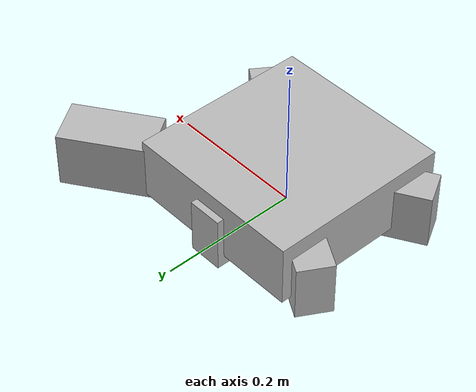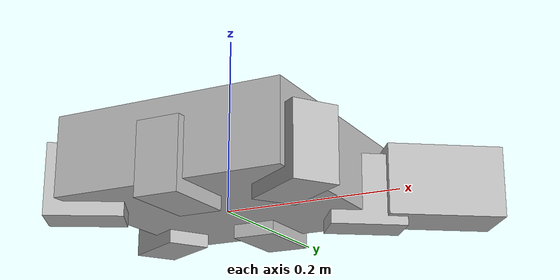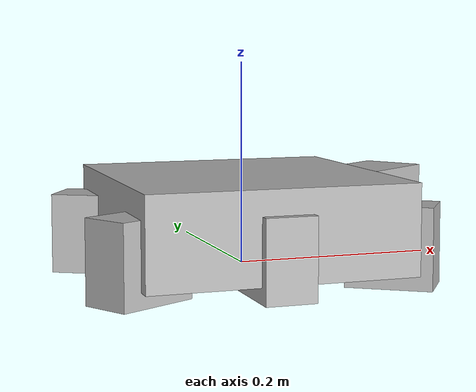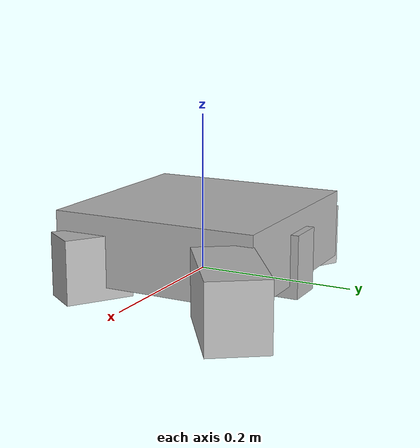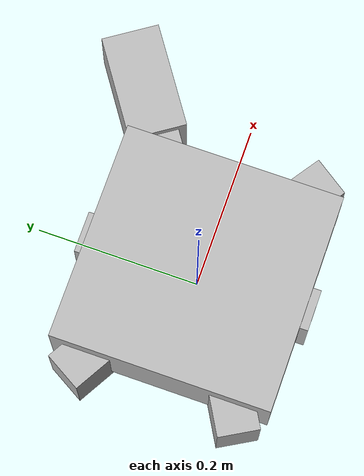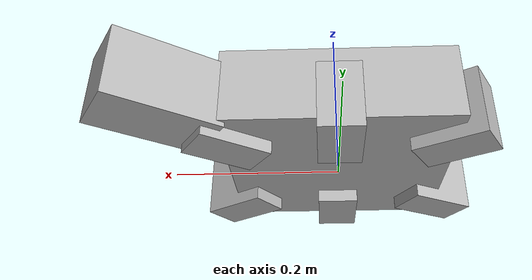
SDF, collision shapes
<?xml version="1.0" ?>
<sdf version="1.5">
  <model name="aecert_hexapod">
  <pose>0.0 0.0 0.0 0.0 0.0 0.0</pose>
<!-- https://github.com/ROBOTIS-GIT/turtlebot3_simulations/blob/foxy-devel/turtlebot3_gazebo/models/turtlebot3_waffle/model.sdf -->

    <link name="base_link">

      <inertial>
        <pose>0 0 0 0 0 0</pose>
        <inertia>
          <ixx>4.2111447e-02</ixx>
          <ixy>0</ixy>
          <ixz>0</ixz>
          <iyy>4.2111447e-02</iyy>
          <iyz>0</iyz>
          <izz>7.5254874e-02</izz>
        </inertia>
        <mass>1.3729096e+00</mass>
      </inertial>

      <collision name="base_collision">
        <pose>0 0 0.045 0 0 0</pose>
        <geometry>
          <box>
            <size>0.265 0.265 0.089</size>
          </box>
        </geometry>
      </collision>

      <visual name="base_visual">
        <pose>0 0 0 0 0 0</pose>
        <geometry>
          <mesh>
            <uri>model://aecert_hexapod/meshes/base.stl</uri>
            <scale>0.001 0.001 0.001</scale>
          </mesh>
        </geometry>
      </visual>

    </link>

    <link name="coxa_fl_link">

      <pose>0.1 0.07 0.025 0 0 0.6</pose>
      <inertial>
        <pose>0 0 0 0 0 0</pose>
        <inertia>
          <ixx>4.2111447e-02</ixx>
          <ixy>0</ixy>
          <ixz>0</ixz>
          <iyy>4.2111447e-02</iyy>
          <iyz>0</iyz>
          <izz>7.5254874e-02</izz>
        </inertia>
        <mass>1.3729096e+00</mass>
      </inertial>

      <collision name="coxa_fl_collision">
        <pose>0.03 0 0 0 0 0</pose>
        <geometry>
          <box>
            <size>0.085 0.05 0.08</size>
          </box>
        </geometry>
      </collision>

      <visual name="coxa_fl_visual">
        <pose>0 0 0 0 0 0</pose>
        <geometry>
          <mesh>
            <uri>model://aecert_hexapod/meshes/coxa.stl</uri>
            <scale>0.001 0.001 0.001</scale>
          </mesh>
        </geometry>
      </visual>

    </link>

    <link name="coxa_fr_link">

      <pose>0.1 -0.07 0.025 0 0 -0.6</pose>
      <inertial>
        <pose>0 0 0 0 0 0</pose>
        <inertia>
          <ixx>4.2111447e-02</ixx>
          <ixy>0</ixy>
          <ixz>0</ixz>
          <iyy>4.2111447e-02</iyy>
          <iyz>0</iyz>
          <izz>7.5254874e-02</izz>
        </inertia>
        <mass>1.3729096e+00</mass>
      </inertial>

      <collision name="coxa_fr_collision">
        <pose>0.03 0 0 0 0 0</pose>
        <geometry>
          <box>
            <size>0.085 0.05 0.08</size>
          </box>
        </geometry>
      </collision>

      <visual name="coxa_fr_visual">
        <pose>0 0 0 0 0 0</pose>
        <geometry>
          <mesh>
            <uri>model://aecert_hexapod/meshes/coxa.stl</uri>
            <scale>0.001 0.001 0.001</scale>
          </mesh>
        </geometry>
      </visual>

    </link>

    <link name="coxa_ml_link">

      <pose>0 0.07 0.025 0 0 1.57</pose>
      <inertial>
        <pose>0 0 0 0 0 0</pose>
        <inertia>
          <ixx>4.2111447e-02</ixx>
          <ixy>0</ixy>
          <ixz>0</ixz>
          <iyy>4.2111447e-02</iyy>
          <iyz>0</iyz>
          <izz>7.5254874e-02</izz>
        </inertia>
        <mass>1.3729096e+00</mass>
      </inertial>

      <collision name="coxa_fl_collision">
        <pose>0.03 0 0 0 0 0</pose>
        <geometry>
          <box>
            <size>0.085 0.05 0.08</size>
          </box>
        </geometry>
      </collision>

      <visual name="coxa_fl_visual">
        <pose>0 0 0 0 0 0</pose>
        <geometry>
          <mesh>
            <uri>model://aecert_hexapod/meshes/coxa.stl</uri>
            <scale>0.001 0.001 0.001</scale>
          </mesh>
        </geometry>
      </visual>

    </link>

    <link name="coxa_mr_link">

      <pose>0 -0.07 0.025 0 0 -1.57</pose>
      <inertial>
        <pose>0 0 0 0 0 0</pose>
        <inertia>
          <ixx>4.2111447e-02</ixx>
          <ixy>0</ixy>
          <ixz>0</ixz>
          <iyy>4.2111447e-02</iyy>
          <iyz>0</iyz>
          <izz>7.5254874e-02</izz>
        </inertia>
        <mass>1.3729096e+00</mass>
      </inertial>

      <collision name="coxa_fl_collision">
        <pose>0.03 0 0 0 0 0</pose>
        <geometry>
          <box>
            <size>0.085 0.05 0.08</size>
          </box>
        </geometry>
      </collision>

      <visual name="coxa_fl_visual">
        <pose>0 0 0 0 0 0</pose>
        <geometry>
          <mesh>
            <uri>model://aecert_hexapod/meshes/coxa.stl</uri>
            <scale>0.001 0.001 0.001</scale>
          </mesh>
        </geometry>
      </visual>

    </link>

    <link name="coxa_bl_link">

      <pose>-0.1 0.07 0.025 0 0 2.62</pose>
      <inertial>
        <pose>0 0 0 0 0 0</pose>
        <inertia>
          <ixx>4.2111447e-02</ixx>
          <ixy>0</ixy>
          <ixz>0</ixz>
          <iyy>4.2111447e-02</iyy>
          <iyz>0</iyz>
          <izz>7.5254874e-02</izz>
        </inertia>
        <mass>1.3729096e+00</mass>
      </inertial>

      <collision name="coxa_fl_collision">
        <pose>0.03 0 0 0 0 0</pose>
        <geometry>
          <box>
            <size>0.085 0.05 0.08</size>
          </box>
        </geometry>
      </collision>

      <visual name="coxa_fl_visual">
        <pose>0 0 0 0 0 0</pose>
        <geometry>
          <mesh>
            <uri>model://aecert_hexapod/meshes/coxa.stl</uri>
            <scale>0.001 0.001 0.001</scale>
          </mesh>
        </geometry>
      </visual>

    </link>

    <link name="coxa_br_link">

      <pose>-0.1 -0.07 0.025 0 0 -2.62</pose>
      <inertial>
        <pose>0 0 0 0 0 0</pose>
        <inertia>
          <ixx>4.2111447e-02</ixx>
          <ixy>0</ixy>
          <ixz>0</ixz>
          <iyy>4.2111447e-02</iyy>
          <iyz>0</iyz>
          <izz>7.5254874e-02</izz>
        </inertia>
        <mass>1.3729096e+00</mass>
      </inertial>

      <collision name="coxa_fl_collision">
        <pose>0.03 0 0 0 0 0</pose>
        <geometry>
          <box>
            <size>0.085 0.05 0.08</size>
          </box>
        </geometry>
      </collision>

      <visual name="coxa_fl_visual">
        <pose>0 0 0 0 0 0</pose>
        <geometry>
          <mesh>
            <uri>model://aecert_hexapod/meshes/coxa.stl</uri>
            <scale>0.001 0.001 0.001</scale>
          </mesh>
        </geometry>
      </visual>

    </link>

    <joint name="coxa_fl_joint" type="revolute">
      <pose relative_to="coxa_fl_link">0 0 0 0 0 0</pose>
      <parent>base_link</parent>
      <child>coxa_fl_link</child>
      <axis>
        <xyz expressed_in='__model__'>0 0 1</xyz>
        <limit>
          <lower>-1.79769e+308</lower>    <!--negative infinity-->
          <upper>1.79769e+308</upper>     <!--positive infinity-->
        </limit>
      </axis>
    </joint>

    <joint name="coxa_fr_joint" type="revolute">
      <pose relative_to="coxa_fr_link">0 0 0 0 0 0</pose>
      <parent>base_link</parent>
      <child>coxa_fr_link</child>
      <axis>
        <xyz expressed_in='__model__'>0 0 1</xyz>
        <limit>
          <lower>-1.79769e+308</lower>    <!--negative infinity-->
          <upper>1.79769e+308</upper>     <!--positive infinity-->
        </limit>
      </axis>
    </joint>

    <joint name="coxa_ml_joint" type="revolute">
      <pose relative_to="coxa_ml_link">0 0 0 0 0 0</pose>
      <parent>base_link</parent>
      <child>coxa_ml_link</child>
      <axis>
        <xyz expressed_in='__model__'>0 0 1</xyz>
        <limit>
          <lower>-1.79769e+308</lower>    <!--negative infinity-->
          <upper>1.79769e+308</upper>     <!--positive infinity-->
        </limit>
      </axis>
    </joint>

    <joint name="coxa_mr_joint" type="revolute">
      <pose relative_to="coxa_mr_link">0 0 0 0 0 0</pose>
      <parent>base_link</parent>
      <child>coxa_mr_link</child>
      <axis>
        <xyz expressed_in='__model__'>0 0 1</xyz>
        <limit>
          <lower>-1.79769e+308</lower>    <!--negative infinity-->
          <upper>1.79769e+308</upper>     <!--positive infinity-->
        </limit>
      </axis>
    </joint>

    <joint name="coxa_bl_joint" type="revolute">
      <pose relative_to="coxa_bl_link">0 0 0 0 0 0</pose>
      <parent>base_link</parent>
      <child>coxa_bl_link</child>
      <axis>
        <xyz expressed_in='__model__'>0 0 1</xyz>
        <limit>
          <lower>-1.79769e+308</lower>    <!--negative infinity-->
          <upper>1.79769e+308</upper>     <!--positive infinity-->
        </limit>
      </axis>
    </joint>

    <joint name="coxa_br_joint" type="revolute">
      <pose relative_to="coxa_br_link">0 0 0 0 0 0</pose>
      <parent>base_link</parent>
      <child>coxa_br_link</child>
      <axis>
        <xyz expressed_in='__model__'>0 0 1</xyz>
        <limit>
          <lower>-1.79769e+308</lower>    <!--negative infinity-->
          <upper>1.79769e+308</upper>     <!--positive infinity-->
        </limit>
      </axis>
    </joint>

    <link name="femur_fl_link">

      <pose relative_to="coxa_fl_link">0.055 0 0.01 0 0 0</pose>
      <inertial>
        <pose>0 0 0 0 0 0</pose>
        <inertia>
          <ixx>4.2111447e-02</ixx>
          <ixy>0</ixy>
          <ixz>0</ixz>
          <iyy>4.2111447e-02</iyy>
          <iyz>0</iyz>
          <izz>7.5254874e-02</izz>
        </inertia>
        <mass>1.3729096e+00</mass>
      </inertial>

      <collision name="femur_fl_collision">
        <pose>0.06 0 0 0 0 0</pose>
        <geometry>
          <box>
            <size>0.13 0.07 0.08</size>
          </box>
        </geometry>
      </collision>

      <visual name="femur_fl_visual">
        <pose>0 0 0 0 0 0</pose>
        <geometry>
          <mesh>
            <uri>model://aecert_hexapod/meshes/femur.stl</uri>
            <scale>0.001 0.001 0.001</scale>
          </mesh>
        </geometry>
      </visual>

    </link>

    <joint name="femur_fl_joint" type="revolute">
      <pose relative_to="femur_fl_link">0 0 0 0 0 0</pose>
      <parent>coxa_fl_link</parent>
      <child>femur_fl_link</child>
      <axis>
        <xyz expressed_in='__model__'>0 1 0</xyz>
        <limit>
          <lower>-1.79769e+308</lower>    <!--negative infinity-->
          <upper>1.79769e+308</upper>     <!--positive infinity-->
        </limit>
      </axis>
    </joint>

    <plugin name="ignition::gazebo::systems::JointStatePublisher" filename="ignition-gazebo-joint-state-publisher-system">

    </plugin>

  </model>
</sdf>
